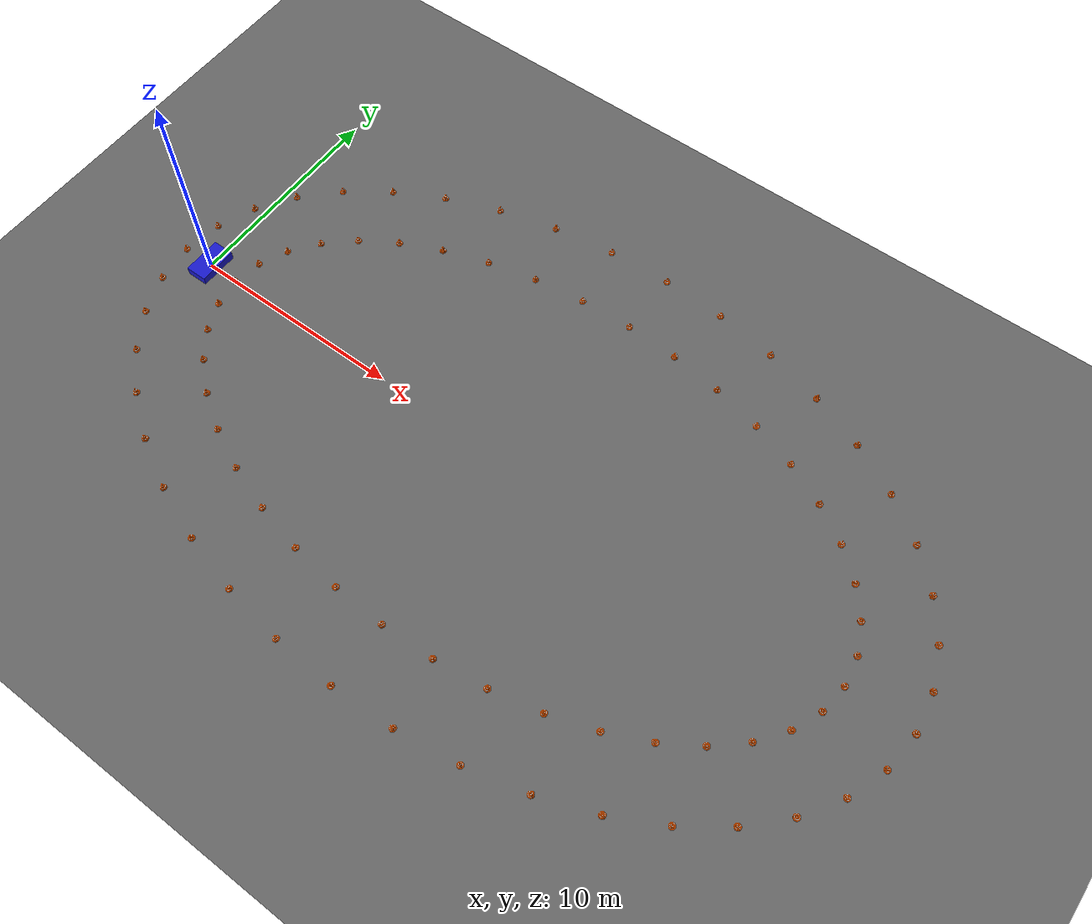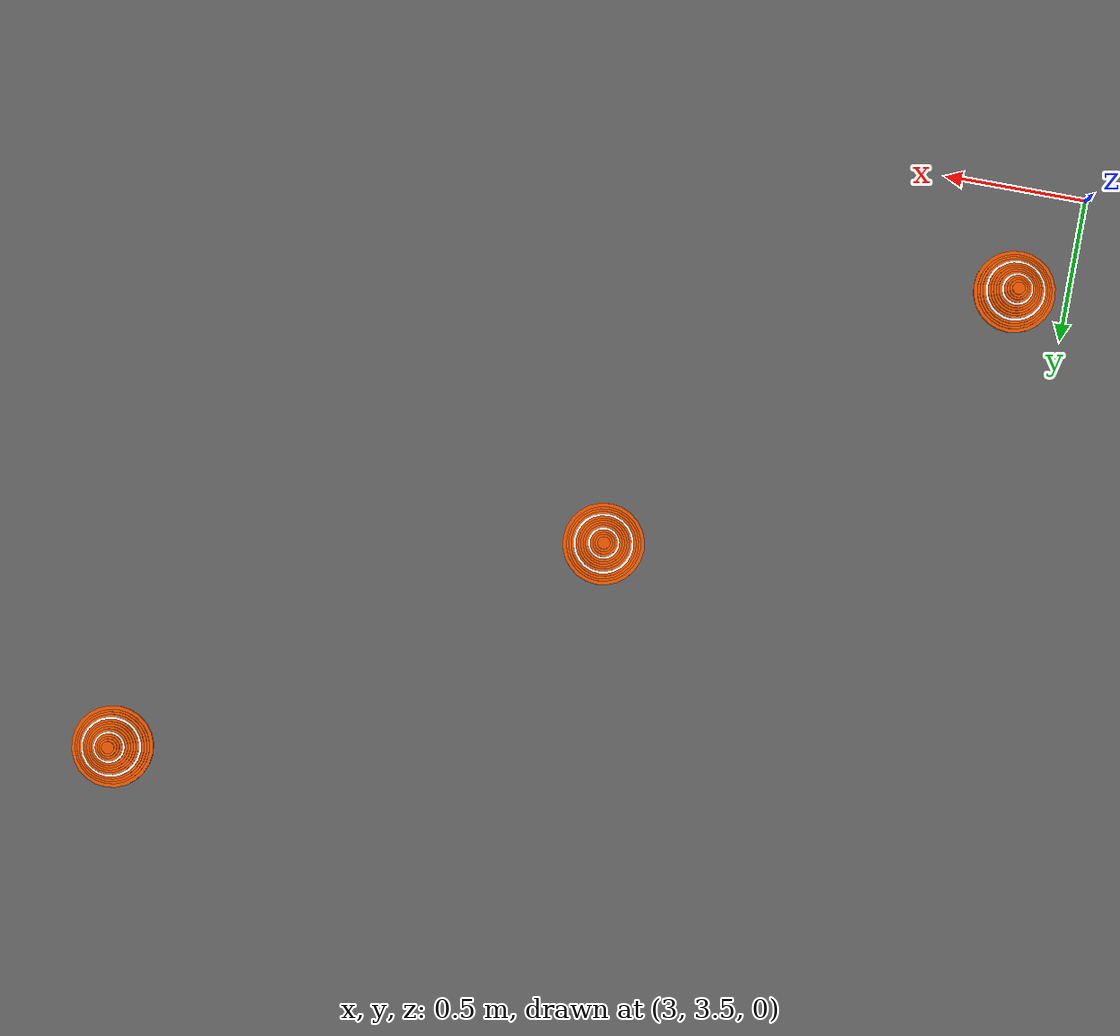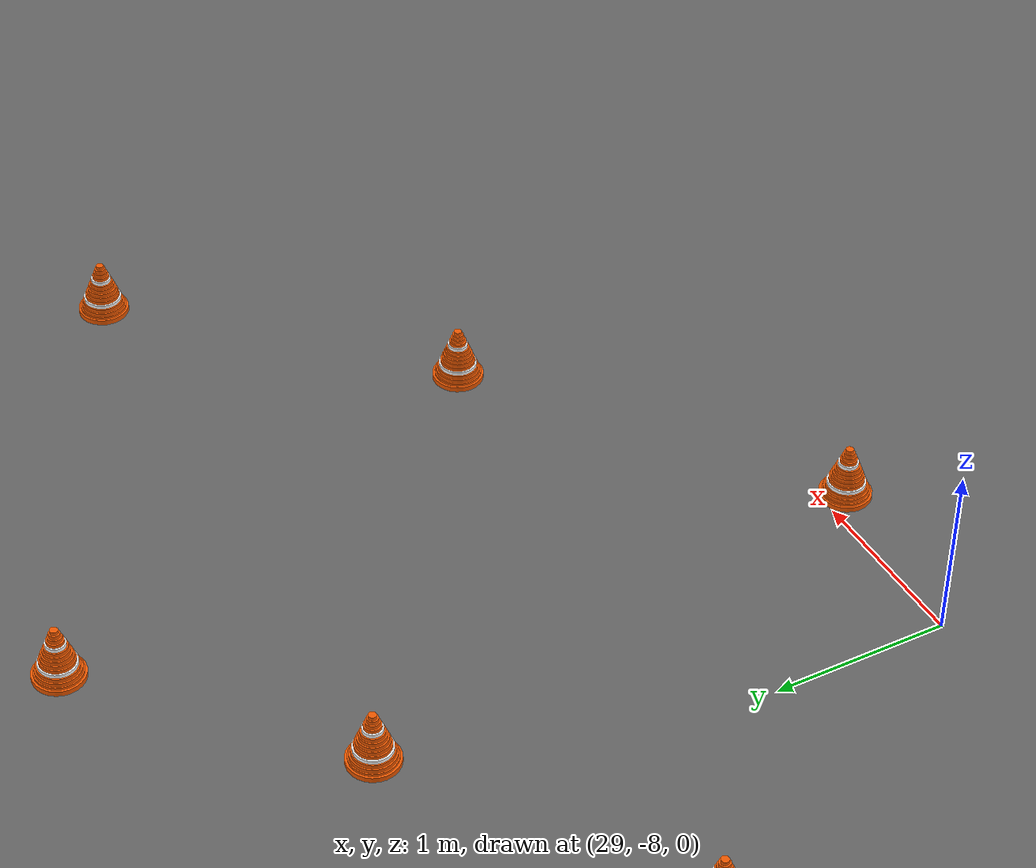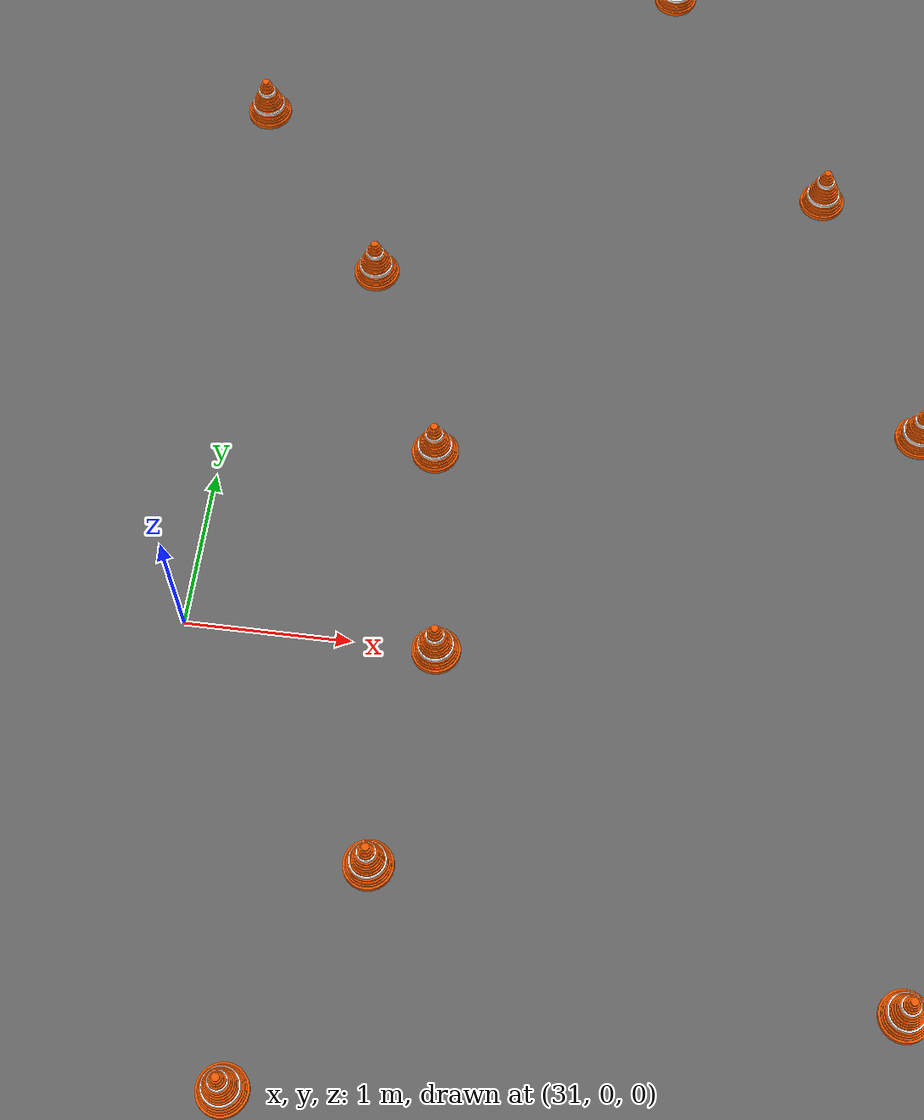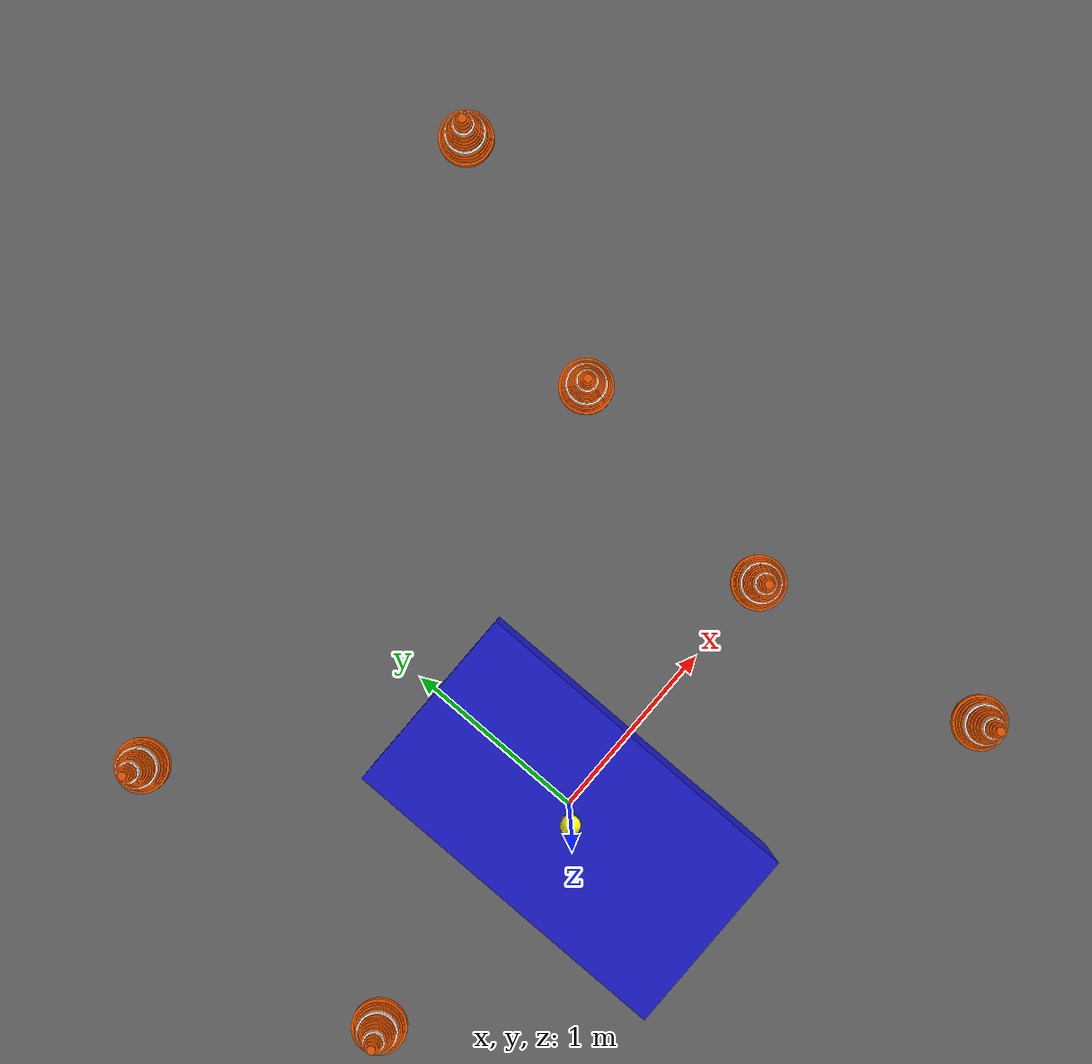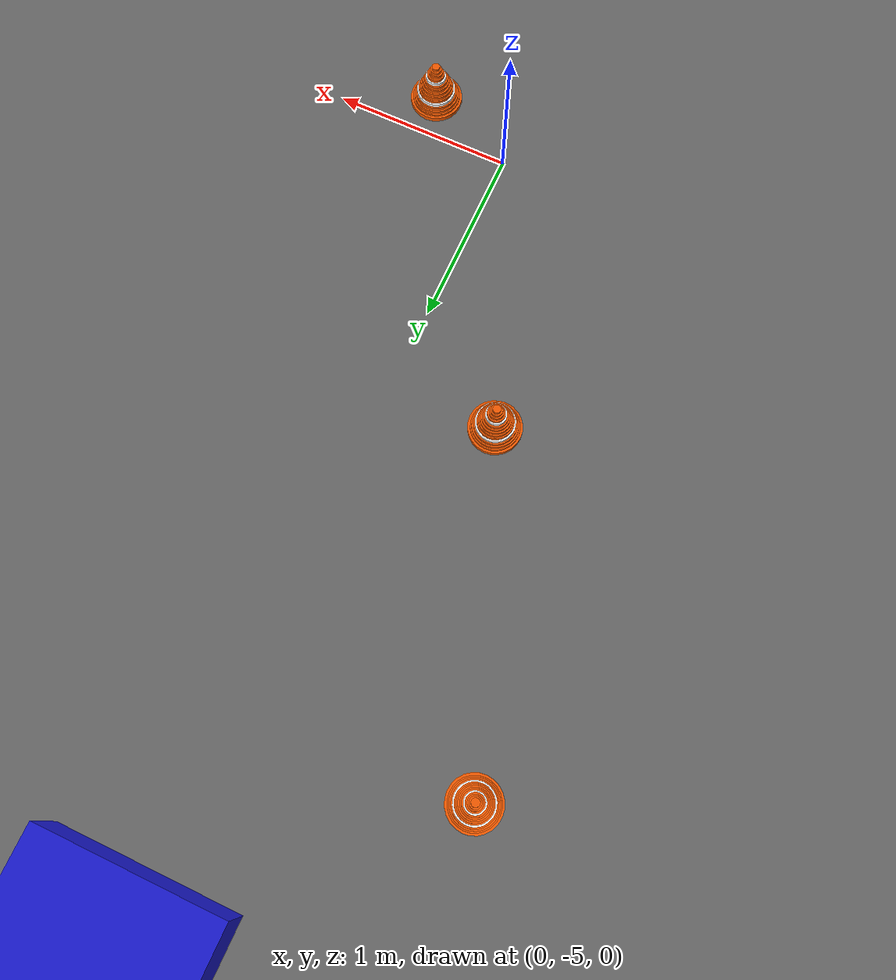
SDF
<?xml version="1.0"?>
<sdf version="1.6">
<world name="fasttube_track">

  <physics type="ode">
    <real_time_update_rate>1000</real_time_update_rate>
    <max_step_size>0.001</max_step_size>
  </physics>

  <light name="sun" type="directional">
    <cast_shadows>true</cast_shadows>
    <pose>0 0 20 0 0 0</pose>
    <diffuse>0.9 0.9 0.9 1</diffuse>
    <specular>0.2 0.2 0.2 1</specular>
    <direction>-0.5 0.1 -0.9</direction>
  </light>

  <model name="ground">
    <static>true</static>
    <link name="link">
      <collision name="col">
        <geometry><plane><normal>0 0 1</normal><size>200 200</size></plane></geometry>
      </collision>
      <visual name="vis">
        <geometry><plane><normal>0 0 1</normal><size>200 200</size></plane></geometry>
        <material>
          <ambient>0.3 0.3 0.3 1</ambient>
          <diffuse>0.4 0.4 0.4 1</diffuse>
        </material>
      </visual>
    </link>
  </model>

  <!-- Vehicle / LiDAR origin marker -->
  <model name="vehicle">
    <static>true</static>
    <pose>0.000 0.000 0 0 0 1.5708</pose>
    <link name="body">
      <!-- Car body: 1.8 m long, 1.0 m wide, 0.4 m tall → top at z=0.4 -->
      <visual name="chassis">
        <pose>0 0 0.2 0 0 0</pose>
        <geometry><box><size>1.8 1.0 0.4</size></box></geometry>
        <material><ambient>0.1 0.1 0.8 1</ambient><diffuse>0.1 0.1 0.8 1</diffuse></material>
      </visual>
      <!-- LiDAR mount bracket on roof -->
      <visual name="lidar_mount">
        <pose>0 0 0.43 0 0 0</pose>
        <geometry><cylinder><radius>0.04</radius><length>0.06</length></cylinder></geometry>
        <material><ambient>0.3 0.3 0.3 1</ambient><diffuse>0.3 0.3 0.3 1</diffuse></material>
      </visual>
      <!-- LiDAR sensor: sphere resting on mount, centre at z=0.5 = LIDAR_HEIGHT -->
      <visual name="lidar_sensor">
        <pose>0 0 0.5 0 0 0</pose>
        <geometry><sphere><radius>0.05</radius></sphere></geometry>
        <material><ambient>1 1 0 1</ambient><diffuse>1 1 0 1</diffuse></material>
      </visual>
    </link>
  </model>

  <!-- Oval track | centre 17.0 m ahead | outer 11.5×18.5 | inner 8.5×15.5 -->
  <include>
    <name>cone_outer_00</name>
    <uri>model://cone</uri>
    <pose>17.000 -11.500 0 0 0 0</pose>
  </include>
  <include>
    <name>cone_inner_00</name>
    <uri>model://cone</uri>
    <pose>17.000 -8.500 0 0 0 0</pose>
  </include>
  <include>
    <name>cone_outer_01</name>
    <uri>model://cone</uri>
    <pose>19.894 -11.358 0 0 0 0</pose>
  </include>
  <include>
    <name>cone_inner_01</name>
    <uri>model://cone</uri>
    <pose>19.425 -8.395 0 0 0 0</pose>
  </include>
  <include>
    <name>cone_outer_02</name>
    <uri>model://cone</uri>
    <pose>22.717 -10.937 0 0 0 0</pose>
  </include>
  <include>
    <name>cone_inner_02</name>
    <uri>model://cone</uri>
    <pose>21.790 -8.084 0 0 0 0</pose>
  </include>
  <include>
    <name>cone_outer_03</name>
    <uri>model://cone</uri>
    <pose>25.399 -10.247 0 0 0 0</pose>
  </include>
  <include>
    <name>cone_inner_03</name>
    <uri>model://cone</uri>
    <pose>24.037 -7.574 0 0 0 0</pose>
  </include>
  <include>
    <name>cone_outer_04</name>
    <uri>model://cone</uri>
    <pose>27.874 -9.304 0 0 0 0</pose>
  </include>
  <include>
    <name>cone_inner_04</name>
    <uri>model://cone</uri>
    <pose>26.111 -6.877 0 0 0 0</pose>
  </include>
  <include>
    <name>cone_outer_05</name>
    <uri>model://cone</uri>
    <pose>30.081 -8.132 0 0 0 0</pose>
  </include>
  <include>
    <name>cone_inner_05</name>
    <uri>model://cone</uri>
    <pose>27.960 -6.010 0 0 0 0</pose>
  </include>
  <include>
    <name>cone_outer_06</name>
    <uri>model://cone</uri>
    <pose>31.967 -6.760 0 0 0 0</pose>
  </include>
  <include>
    <name>cone_inner_06</name>
    <uri>model://cone</uri>
    <pose>29.540 -4.996 0 0 0 0</pose>
  </include>
  <include>
    <name>cone_outer_07</name>
    <uri>model://cone</uri>
    <pose>33.484 -5.221 0 0 0 0</pose>
  </include>
  <include>
    <name>cone_inner_07</name>
    <uri>model://cone</uri>
    <pose>30.811 -3.859 0 0 0 0</pose>
  </include>
  <include>
    <name>cone_outer_08</name>
    <uri>model://cone</uri>
    <pose>34.595 -3.554 0 0 0 0</pose>
  </include>
  <include>
    <name>cone_inner_08</name>
    <uri>model://cone</uri>
    <pose>31.741 -2.627 0 0 0 0</pose>
  </include>
  <include>
    <name>cone_outer_09</name>
    <uri>model://cone</uri>
    <pose>35.272 -1.799 0 0 0 0</pose>
  </include>
  <include>
    <name>cone_inner_09</name>
    <uri>model://cone</uri>
    <pose>32.309 -1.330 0 0 0 0</pose>
  </include>
  <include>
    <name>cone_outer_10</name>
    <uri>model://cone</uri>
    <pose>35.500 -0.000 0 0 0 0</pose>
  </include>
  <include>
    <name>cone_inner_10</name>
    <uri>model://cone</uri>
    <pose>32.500 -0.000 0 0 0 0</pose>
  </include>
  <include>
    <name>cone_outer_11</name>
    <uri>model://cone</uri>
    <pose>35.272 1.799 0 0 0 0</pose>
  </include>
  <include>
    <name>cone_inner_11</name>
    <uri>model://cone</uri>
    <pose>32.309 1.330 0 0 0 0</pose>
  </include>
  <include>
    <name>cone_outer_12</name>
    <uri>model://cone</uri>
    <pose>34.595 3.554 0 0 0 0</pose>
  </include>
  <include>
    <name>cone_inner_12</name>
    <uri>model://cone</uri>
    <pose>31.741 2.627 0 0 0 0</pose>
  </include>
  <include>
    <name>cone_outer_13</name>
    <uri>model://cone</uri>
    <pose>33.484 5.221 0 0 0 0</pose>
  </include>
  <include>
    <name>cone_inner_13</name>
    <uri>model://cone</uri>
    <pose>30.811 3.859 0 0 0 0</pose>
  </include>
  <include>
    <name>cone_outer_14</name>
    <uri>model://cone</uri>
    <pose>31.967 6.760 0 0 0 0</pose>
  </include>
  <include>
    <name>cone_inner_14</name>
    <uri>model://cone</uri>
    <pose>29.540 4.996 0 0 0 0</pose>
  </include>
  <include>
    <name>cone_outer_15</name>
    <uri>model://cone</uri>
    <pose>30.081 8.132 0 0 0 0</pose>
  </include>
  <include>
    <name>cone_inner_15</name>
    <uri>model://cone</uri>
    <pose>27.960 6.010 0 0 0 0</pose>
  </include>
  <include>
    <name>cone_outer_16</name>
    <uri>model://cone</uri>
    <pose>27.874 9.304 0 0 0 0</pose>
  </include>
  <include>
    <name>cone_inner_16</name>
    <uri>model://cone</uri>
    <pose>26.111 6.877 0 0 0 0</pose>
  </include>
  <include>
    <name>cone_outer_17</name>
    <uri>model://cone</uri>
    <pose>25.399 10.247 0 0 0 0</pose>
  </include>
  <include>
    <name>cone_inner_17</name>
    <uri>model://cone</uri>
    <pose>24.037 7.574 0 0 0 0</pose>
  </include>
  <include>
    <name>cone_outer_18</name>
    <uri>model://cone</uri>
    <pose>22.717 10.937 0 0 0 0</pose>
  </include>
  <include>
    <name>cone_inner_18</name>
    <uri>model://cone</uri>
    <pose>21.790 8.084 0 0 0 0</pose>
  </include>
  <include>
    <name>cone_outer_19</name>
    <uri>model://cone</uri>
    <pose>19.894 11.358 0 0 0 0</pose>
  </include>
  <include>
    <name>cone_inner_19</name>
    <uri>model://cone</uri>
    <pose>19.425 8.395 0 0 0 0</pose>
  </include>
  <include>
    <name>cone_outer_20</name>
    <uri>model://cone</uri>
    <pose>17.000 11.500 0 0 0 0</pose>
  </include>
  <include>
    <name>cone_inner_20</name>
    <uri>model://cone</uri>
    <pose>17.000 8.500 0 0 0 0</pose>
  </include>
  <include>
    <name>cone_outer_21</name>
    <uri>model://cone</uri>
    <pose>14.106 11.358 0 0 0 0</pose>
  </include>
  <include>
    <name>cone_inner_21</name>
    <uri>model://cone</uri>
    <pose>14.575 8.395 0 0 0 0</pose>
  </include>
  <include>
    <name>cone_outer_22</name>
    <uri>model://cone</uri>
    <pose>11.283 10.937 0 0 0 0</pose>
  </include>
  <include>
    <name>cone_inner_22</name>
    <uri>model://cone</uri>
    <pose>12.210 8.084 0 0 0 0</pose>
  </include>
  <include>
    <name>cone_outer_23</name>
    <uri>model://cone</uri>
    <pose>8.601 10.247 0 0 0 0</pose>
  </include>
  <include>
    <name>cone_inner_23</name>
    <uri>model://cone</uri>
    <pose>9.963 7.574 0 0 0 0</pose>
  </include>
  <include>
    <name>cone_outer_24</name>
    <uri>model://cone</uri>
    <pose>6.126 9.304 0 0 0 0</pose>
  </include>
  <include>
    <name>cone_inner_24</name>
    <uri>model://cone</uri>
    <pose>7.889 6.877 0 0 0 0</pose>
  </include>
  <include>
    <name>cone_outer_25</name>
    <uri>model://cone</uri>
    <pose>3.919 8.132 0 0 0 0</pose>
  </include>
  <include>
    <name>cone_inner_25</name>
    <uri>model://cone</uri>
    <pose>6.040 6.010 0 0 0 0</pose>
  </include>
  <include>
    <name>cone_outer_26</name>
    <uri>model://cone</uri>
    <pose>2.033 6.760 0 0 0 0</pose>
  </include>
  <include>
    <name>cone_inner_26</name>
    <uri>model://cone</uri>
    <pose>4.460 4.996 0 0 0 0</pose>
  </include>
  <include>
    <name>cone_outer_27</name>
    <uri>model://cone</uri>
    <pose>0.516 5.221 0 0 0 0</pose>
  </include>
  <include>
    <name>cone_inner_27</name>
    <uri>model://cone</uri>
    <pose>3.189 3.859 0 0 0 0</pose>
  </include>
  <include>
    <name>cone_outer_28</name>
    <uri>model://cone</uri>
    <pose>-0.595 3.554 0 0 0 0</pose>
  </include>
  <include>
    <name>cone_inner_28</name>
    <uri>model://cone</uri>
    <pose>2.259 2.627 0 0 0 0</pose>
  </include>
  <include>
    <name>cone_outer_29</name>
    <uri>model://cone</uri>
    <pose>-1.272 1.799 0 0 0 0</pose>
  </include>
  <include>
    <name>cone_inner_29</name>
    <uri>model://cone</uri>
    <pose>1.691 1.330 0 0 0 0</pose>
  </include>
  <include>
    <name>cone_outer_30</name>
    <uri>model://cone</uri>
    <pose>-1.500 0.000 0 0 0 0</pose>
  </include>
  <include>
    <name>cone_inner_30</name>
    <uri>model://cone</uri>
    <pose>1.500 0.000 0 0 0 0</pose>
  </include>
  <include>
    <name>cone_outer_31</name>
    <uri>model://cone</uri>
    <pose>-1.272 -1.799 0 0 0 0</pose>
  </include>
  <include>
    <name>cone_inner_31</name>
    <uri>model://cone</uri>
    <pose>1.691 -1.330 0 0 0 0</pose>
  </include>
  <include>
    <name>cone_outer_32</name>
    <uri>model://cone</uri>
    <pose>-0.595 -3.554 0 0 0 0</pose>
  </include>
  <include>
    <name>cone_inner_32</name>
    <uri>model://cone</uri>
    <pose>2.259 -2.627 0 0 0 0</pose>
  </include>
  <include>
    <name>cone_outer_33</name>
    <uri>model://cone</uri>
    <pose>0.516 -5.221 0 0 0 0</pose>
  </include>
  <include>
    <name>cone_inner_33</name>
    <uri>model://cone</uri>
    <pose>3.189 -3.859 0 0 0 0</pose>
  </include>
  <include>
    <name>cone_outer_34</name>
    <uri>model://cone</uri>
    <pose>2.033 -6.760 0 0 0 0</pose>
  </include>
  <include>
    <name>cone_inner_34</name>
    <uri>model://cone</uri>
    <pose>4.460 -4.996 0 0 0 0</pose>
  </include>
  <include>
    <name>cone_outer_35</name>
    <uri>model://cone</uri>
    <pose>3.919 -8.132 0 0 0 0</pose>
  </include>
  <include>
    <name>cone_inner_35</name>
    <uri>model://cone</uri>
    <pose>6.040 -6.010 0 0 0 0</pose>
  </include>
  <include>
    <name>cone_outer_36</name>
    <uri>model://cone</uri>
    <pose>6.126 -9.304 0 0 0 0</pose>
  </include>
  <include>
    <name>cone_inner_36</name>
    <uri>model://cone</uri>
    <pose>7.889 -6.877 0 0 0 0</pose>
  </include>
  <include>
    <name>cone_outer_37</name>
    <uri>model://cone</uri>
    <pose>8.601 -10.247 0 0 0 0</pose>
  </include>
  <include>
    <name>cone_inner_37</name>
    <uri>model://cone</uri>
    <pose>9.963 -7.574 0 0 0 0</pose>
  </include>
  <include>
    <name>cone_outer_38</name>
    <uri>model://cone</uri>
    <pose>11.283 -10.937 0 0 0 0</pose>
  </include>
  <include>
    <name>cone_inner_38</name>
    <uri>model://cone</uri>
    <pose>12.210 -8.084 0 0 0 0</pose>
  </include>
  <include>
    <name>cone_outer_39</name>
    <uri>model://cone</uri>
    <pose>14.106 -11.358 0 0 0 0</pose>
  </include>
  <include>
    <name>cone_inner_39</name>
    <uri>model://cone</uri>
    <pose>14.575 -8.395 0 0 0 0</pose>
  </include>

</world>
</sdf>

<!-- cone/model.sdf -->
<sdf version="1.6">
  <model name="traffic_cone">
    <static>true</static>
    <link name="link">

      <!-- ── Collision ──────────────────────────────────────────────────── -->
      <collision name="col">
        <pose>0 0 0.1625 0 0 0</pose>
        <geometry>
          <cylinder><radius>0.085</radius><length>0.325</length></cylinder>
        </geometry>
      </collision>

      <!-- ── Base plate ────────────────────────────────────────────────── -->
      <visual name="base">
        <pose>0 0 0.015 0 0 0</pose>
        <geometry><cylinder><radius>0.145</radius><length>0.030</length></cylinder></geometry>
        <material><ambient>0.95 0.35 0.0 1</ambient><diffuse>0.95 0.35 0.0 1</diffuse></material>
      </visual>

      <!-- ── Cone body – 15 sections ───────────────────────────────────── -->
      <!-- i=0  z=0.011  r=0.141  orange -->
      <visual name="s00">
        <pose>0 0 0.011 0 0 0</pose>
        <geometry><cylinder><radius>0.141</radius><length>0.022</length></cylinder></geometry>
        <material><ambient>0.95 0.35 0.0 1</ambient><diffuse>0.95 0.35 0.0 1</diffuse></material>
      </visual>

      <!-- i=1  z=0.033  r=0.132  orange -->
      <visual name="s01">
        <pose>0 0 0.033 0 0 0</pose>
        <geometry><cylinder><radius>0.132</radius><length>0.022</length></cylinder></geometry>
        <material><ambient>0.95 0.35 0.0 1</ambient><diffuse>0.95 0.35 0.0 1</diffuse></material>
      </visual>

      <!-- i=2  z=0.054  r=0.124  orange -->
      <visual name="s02">
        <pose>0 0 0.054 0 0 0</pose>
        <geometry><cylinder><radius>0.124</radius><length>0.022</length></cylinder></geometry>
        <material><ambient>0.95 0.35 0.0 1</ambient><diffuse>0.95 0.35 0.0 1</diffuse></material>
      </visual>

      <!-- i=3  z=0.076  r=0.115  orange -->
      <visual name="s03">
        <pose>0 0 0.076 0 0 0</pose>
        <geometry><cylinder><radius>0.115</radius><length>0.022</length></cylinder></geometry>
        <material><ambient>0.95 0.35 0.0 1</ambient><diffuse>0.95 0.35 0.0 1</diffuse></material>
      </visual>

      <!-- i=4  z=0.098  r=0.107  WHITE stripe 1 -->
      <visual name="s04">
        <pose>0 0 0.098 0 0 0</pose>
        <geometry><cylinder><radius>0.107</radius><length>0.022</length></cylinder></geometry>
        <material><ambient>1.0 1.0 1.0 1</ambient><diffuse>1.0 1.0 1.0 1</diffuse></material>
      </visual>

      <!-- i=5  z=0.119  r=0.098  orange -->
      <visual name="s05">
        <pose>0 0 0.119 0 0 0</pose>
        <geometry><cylinder><radius>0.098</radius><length>0.022</length></cylinder></geometry>
        <material><ambient>0.95 0.35 0.0 1</ambient><diffuse>0.95 0.35 0.0 1</diffuse></material>
      </visual>

      <!-- i=6  z=0.141  r=0.090  orange -->
      <visual name="s06">
        <pose>0 0 0.141 0 0 0</pose>
        <geometry><cylinder><radius>0.090</radius><length>0.022</length></cylinder></geometry>
        <material><ambient>0.95 0.35 0.0 1</ambient><diffuse>0.95 0.35 0.0 1</diffuse></material>
      </visual>

      <!-- i=7  z=0.163  r=0.082  orange -->
      <visual name="s07">
        <pose>0 0 0.163 0 0 0</pose>
        <geometry><cylinder><radius>0.082</radius><length>0.022</length></cylinder></geometry>
        <material><ambient>0.95 0.35 0.0 1</ambient><diffuse>0.95 0.35 0.0 1</diffuse></material>
      </visual>

      <!-- i=8  z=0.184  r=0.073  orange -->
      <visual name="s08">
        <pose>0 0 0.184 0 0 0</pose>
        <geometry><cylinder><radius>0.073</radius><length>0.022</length></cylinder></geometry>
        <material><ambient>0.95 0.35 0.0 1</ambient><diffuse>0.95 0.35 0.0 1</diffuse></material>
      </visual>

      <!-- i=9  z=0.206  r=0.065  orange -->
      <visual name="s09">
        <pose>0 0 0.206 0 0 0</pose>
        <geometry><cylinder><radius>0.065</radius><length>0.022</length></cylinder></geometry>
        <material><ambient>0.95 0.35 0.0 1</ambient><diffuse>0.95 0.35 0.0 1</diffuse></material>
      </visual>

      <!-- i=10 z=0.228  r=0.056  WHITE stripe 2 -->
      <visual name="s10">
        <pose>0 0 0.228 0 0 0</pose>
        <geometry><cylinder><radius>0.056</radius><length>0.022</length></cylinder></geometry>
        <material><ambient>1.0 1.0 1.0 1</ambient><diffuse>1.0 1.0 1.0 1</diffuse></material>
      </visual>

      <!-- i=11 z=0.249  r=0.048  orange -->
      <visual name="s11">
        <pose>0 0 0.249 0 0 0</pose>
        <geometry><cylinder><radius>0.048</radius><length>0.022</length></cylinder></geometry>
        <material><ambient>0.95 0.35 0.0 1</ambient><diffuse>0.95 0.35 0.0 1</diffuse></material>
      </visual>

      <!-- i=12 z=0.271  r=0.039  orange -->
      <visual name="s12">
        <pose>0 0 0.271 0 0 0</pose>
        <geometry><cylinder><radius>0.039</radius><length>0.022</length></cylinder></geometry>
        <material><ambient>0.95 0.35 0.0 1</ambient><diffuse>0.95 0.35 0.0 1</diffuse></material>
      </visual>

      <!-- i=13 z=0.293  r=0.031  orange -->
      <visual name="s13">
        <pose>0 0 0.293 0 0 0</pose>
        <geometry><cylinder><radius>0.031</radius><length>0.022</length></cylinder></geometry>
        <material><ambient>0.95 0.35 0.0 1</ambient><diffuse>0.95 0.35 0.0 1</diffuse></material>
      </visual>

      <!-- i=14 z=0.314  r=0.022  orange (tip) -->
      <visual name="s14">
        <pose>0 0 0.314 0 0 0</pose>
        <geometry><cylinder><radius>0.022</radius><length>0.022</length></cylinder></geometry>
        <material><ambient>0.95 0.35 0.0 1</ambient><diffuse>0.95 0.35 0.0 1</diffuse></material>
      </visual>

    </link>
  </model>
</sdf>
